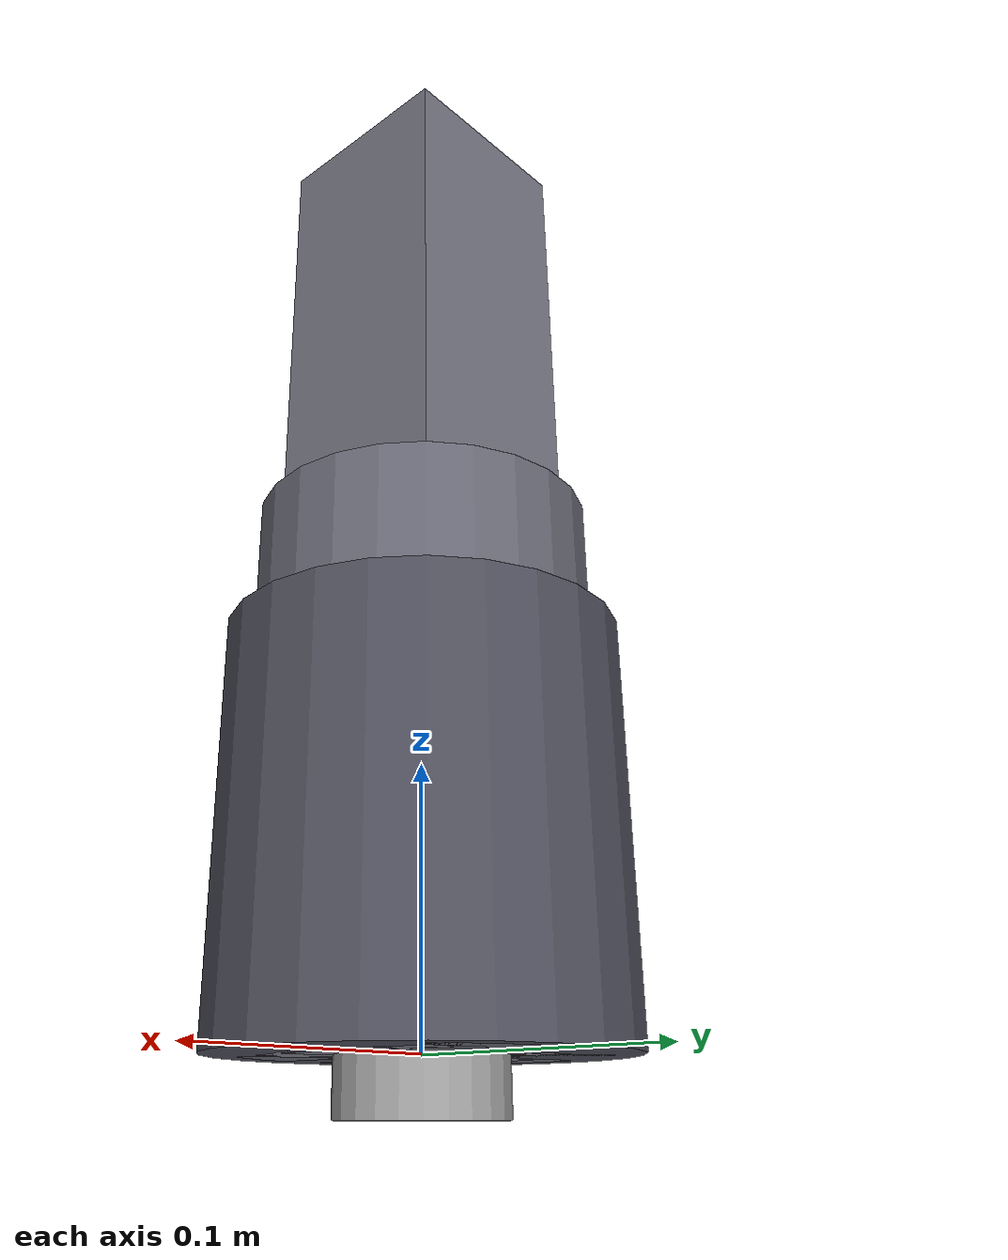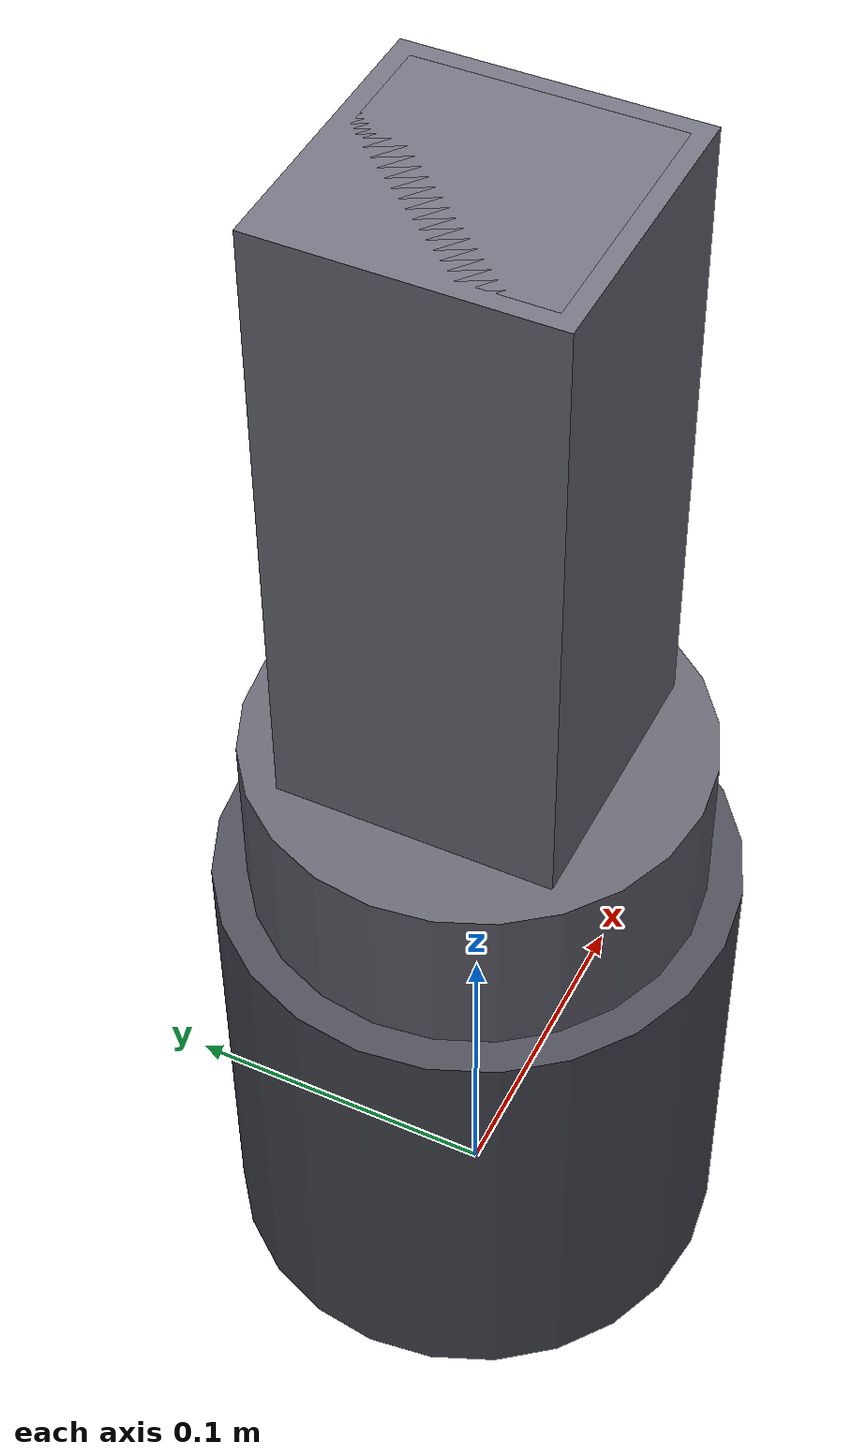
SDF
<?xml version="1.0" encoding="utf-8"?>
<sdf version="1.9">
  <model name="kinova_gen3">

    <!-- LINK 0: base_link (fixed base) -->
    <link name="base_link">
      <pose>0 0 0 0 0 0</pose>
      <inertial>
        <mass>0.50</mass>
        <inertia>
          <ixx>0.003</ixx> <ixy>0.0</ixy> <ixz>0.0</ixz>
          <iyy>0.003</iyy> <iyz>0.0</iyz>
          <izz>0.003</izz>
        </inertia>
      </inertial>
      <visual name="base_visual">
        <pose>0 0 0.075 0 0 0</pose>
        <geometry>
          <cylinder>
            <radius>0.075</radius>
            <length>0.15</length>
          </cylinder>
        </geometry>
        <material>
          <ambient>0.3 0.3 0.35 1</ambient>
          <diffuse>0.3 0.3 0.35 1</diffuse>
          <specular>0.1 0.1 0.1 1</specular>
        </material>
      </visual>
      <collision name="base_collision">
        <pose>0 0 0.075 0 0 0</pose>
        <geometry>
          <cylinder>
            <radius>0.075</radius>
            <length>0.15</length>
          </cylinder>
        </geometry>
      </collision>
    </link>

    <!-- JOINT 1: base → shoulder (actuator 1, Z-axis rotation) -->
    <joint name="joint_1" type="revolute">
      <parent>base_link</parent>
      <child>shoulder_link</child>
      <pose>0 0 0.15 0 0 0</pose>
      <axis>
        <xyz>0 0 1</xyz>
      </axis>
      <limit>
        <lower>-3.1416</lower>
        <upper>3.1416</upper>
        <effort>40</effort>
        <velocity>1.4</velocity>
      </limit>
      <dynamics>
        <damping>0.5</damping>
        <friction>0.3</friction>
      </dynamics>
    </joint>

    <!-- LINK 1: shoulder_link -->
    <link name="shoulder_link">
      <inertial>
        <mass>1.20</mass>
        <inertia>
          <ixx>0.005</ixx> <ixy>0.0</ixy> <ixz>0.0</ixz>
          <iyy>0.002</iyy> <iyz>0.0</iyz>
          <izz>0.005</izz>
        </inertia>
      </inertial>
      <visual name="shoulder_visual">
        <pose>0 0 0.10 0 0 0</pose>
        <geometry>
          <cylinder>
            <radius>0.065</radius>
            <length>0.20</length>
          </cylinder>
        </geometry>
        <material>
          <ambient>0.4 0.4 0.45 1</ambient>
          <diffuse>0.4 0.4 0.45 1</diffuse>
        </material>
      </visual>
      <collision name="shoulder_collision">
        <pose>0 0 0.10 0 0 0</pose>
        <geometry>
          <cylinder>
            <radius>0.065</radius>
            <length>0.20</length>
          </cylinder>
        </geometry>
      </collision>
    </link>

    <!-- JOINT 2: shoulder → upper_arm (actuator 2, Y-axis) -->
    <joint name="joint_2" type="revolute">
      <parent>shoulder_link</parent>
      <child>upper_arm_link</child>
      <pose>0 0 0.20 0 0 0</pose>
      <axis>
        <xyz>0 1 0</xyz>
      </axis>
      <limit>
        <lower>-2.25</lower>
        <upper>2.25</upper>
        <effort>40</effort>
        <velocity>1.4</velocity>
      </limit>
      <dynamics>
        <damping>0.5</damping>
        <friction>0.3</friction>
      </dynamics>
    </joint>

    <!-- LINK 2: upper_arm_link -->
    <link name="upper_arm_link">
      <inertial>
        <mass>1.00</mass>
        <pose>0 0 0.19 0 0 0</pose>
        <inertia>
          <ixx>0.012</ixx> <ixy>0.0</ixy> <ixz>0.0</ixz>
          <iyy>0.001</iyy> <iyz>0.0</iyz>
          <izz>0.012</izz>
        </inertia>
      </inertial>
      <visual name="upper_arm_visual">
        <pose>0 0 0.19 0 0 0</pose>
        <geometry>
          <box>
            <size>0.08 0.08 0.38</size>
          </box>
        </geometry>
        <material>
          <ambient>0.45 0.45 0.5 1</ambient>
          <diffuse>0.45 0.45 0.5 1</diffuse>
        </material>
      </visual>
      <collision name="upper_arm_collision">
        <pose>0 0 0.19 0 0 0</pose>
        <geometry>
          <box>
            <size>0.08 0.08 0.38</size>
          </box>
        </geometry>
      </collision>
    </link>

    <!-- JOINT 3: upper_arm → forearm (actuator 3, Y-axis) -->
    <joint name="joint_3" type="revolute">
      <parent>upper_arm_link</parent>
      <child>forearm_link</child>
      <pose>0 0 0.38 0 0 0</pose>
      <axis>
        <xyz>0 1 0</xyz>
      </axis>
      <limit>
        <lower>-3.1416</lower>
        <upper>3.1416</upper>
        <effort>20</effort>
        <velocity>1.5</velocity>
      </limit>
      <dynamics>
        <damping>0.4</damping>
        <friction>0.25</friction>
      </dynamics>
    </joint>

    <!-- LINK 3: forearm_link -->
    <link name="forearm_link">
      <inertial>
        <mass>0.85</mass>
        <pose>0 0 0.19 0 0 0</pose>
        <inertia>
          <ixx>0.010</ixx> <ixy>0.0</ixy> <ixz>0.0</ixz>
          <iyy>0.001</iyy> <iyz>0.0</iyz>
          <izz>0.010</izz>
        </inertia>
      </inertial>
      <visual name="forearm_visual">
        <pose>0 0 0.19 0 0 0</pose>
        <geometry>
          <box>
            <size>0.07 0.07 0.38</size>
          </box>
        </geometry>
        <material>
          <ambient>0.45 0.45 0.5 1</ambient>
          <diffuse>0.45 0.45 0.5 1</diffuse>
        </material>
      </visual>
      <collision name="forearm_collision">
        <pose>0 0 0.19 0 0 0</pose>
        <geometry>
          <box>
            <size>0.07 0.07 0.38</size>
          </box>
        </geometry>
      </collision>
    </link>

    <!-- JOINT 4: forearm → wrist_1 (actuator 4, X-axis) -->
    <joint name="joint_4" type="revolute">
      <parent>forearm_link</parent>
      <child>wrist_1_link</child>
      <pose>0 0 0.38 0 0 0</pose>
      <axis>
        <xyz>1 0 0</xyz>
      </axis>
      <limit>
        <lower>-2.58</lower>
        <upper>2.58</upper>
        <effort>10</effort>
        <velocity>1.6</velocity>
      </limit>
      <dynamics>
        <damping>0.3</damping>
        <friction>0.2</friction>
      </dynamics>
    </joint>

    <!-- LINK 4: wrist_1_link -->
    <link name="wrist_1_link">
      <inertial>
        <mass>0.30</mass>
        <pose>0 0 0.04 0 0 0</pose>
        <inertia>
          <ixx>0.0005</ixx> <ixy>0.0</ixy> <ixz>0.0</ixz>
          <iyy>0.0005</iyy> <iyz>0.0</iyz>
          <izz>0.0003</izz>
        </inertia>
      </inertial>
      <visual name="wrist_1_visual">
        <pose>0 0 0.04 0 0 0</pose>
        <geometry>
          <cylinder>
            <radius>0.05</radius>
            <length>0.08</length>
          </cylinder>
        </geometry>
        <material>
          <ambient>0.5 0.5 0.55 1</ambient>
          <diffuse>0.5 0.5 0.55 1</diffuse>
        </material>
      </visual>
      <collision name="wrist_1_collision">
        <pose>0 0 0.04 0 0 0</pose>
        <geometry>
          <cylinder>
            <radius>0.05</radius>
            <length>0.08</length>
          </cylinder>
        </geometry>
      </collision>
    </link>

    <!-- JOINT 5: wrist_1 → wrist_2 (actuator 5, Y-axis) -->
    <joint name="joint_5" type="revolute">
      <parent>wrist_1_link</parent>
      <child>wrist_2_link</child>
      <pose>0 0 0.08 0 0 0</pose>
      <axis>
        <xyz>0 1 0</xyz>
      </axis>
      <limit>
        <lower>-3.1416</lower>
        <upper>3.1416</upper>
        <effort>10</effort>
        <velocity>2.0</velocity>
      </limit>
      <dynamics>
        <damping>0.2</damping>
        <friction>0.15</friction>
      </dynamics>
    </joint>

    <!-- LINK 5: wrist_2_link -->
    <link name="wrist_2_link">
      <inertial>
        <mass>0.25</mass>
        <pose>0 0 0.04 0 0 0</pose>
        <inertia>
          <ixx>0.0004</ixx> <ixy>0.0</ixy> <ixz>0.0</ixz>
          <iyy>0.0004</iyy> <iyz>0.0</iyz>
          <izz>0.0002</izz>
        </inertia>
      </inertial>
      <visual name="wrist_2_visual">
        <pose>0 0 0.04 0 0 0</pose>
        <geometry>
          <cylinder>
            <radius>0.045</radius>
            <length>0.08</length>
          </cylinder>
        </geometry>
        <material>
          <ambient>0.5 0.5 0.55 1</ambient>
          <diffuse>0.5 0.5 0.55 1</diffuse>
        </material>
      </visual>
      <collision name="wrist_2_collision">
        <pose>0 0 0.04 0 0 0</pose>
        <geometry>
          <cylinder>
            <radius>0.045</radius>
            <length>0.08</length>
          </cylinder>
        </geometry>
      </collision>
    </link>

    <!-- JOINT 6: wrist_2 → wrist_3 (actuator 6, X-axis) -->
    <joint name="joint_6" type="revolute">
      <parent>wrist_2_link</parent>
      <child>wrist_3_link</child>
      <pose>0 0 0.08 0 0 0</pose>
      <axis>
        <xyz>1 0 0</xyz>
      </axis>
      <limit>
        <lower>-2.10</lower>
        <upper>2.10</upper>
        <effort>10</effort>
        <velocity>2.1</velocity>
      </limit>
      <dynamics>
        <damping>0.2</damping>
        <friction>0.15</friction>
      </dynamics>
    </joint>

    <!-- LINK 6: wrist_3_link -->
    <link name="wrist_3_link">
      <inertial>
        <mass>0.20</mass>
        <pose>0 0 0.035 0 0 0</pose>
        <inertia>
          <ixx>0.0003</ixx> <ixy>0.0</ixy> <ixz>0.0</ixz>
          <iyy>0.0003</iyy> <iyz>0.0</iyz>
          <izz>0.00015</izz>
        </inertia>
      </inertial>
      <visual name="wrist_3_visual">
        <pose>0 0 0.035 0 0 0</pose>
        <geometry>
          <cylinder>
            <radius>0.04</radius>
            <length>0.07</length>
          </cylinder>
        </geometry>
        <material>
          <ambient>0.5 0.5 0.55 1</ambient>
          <diffuse>0.5 0.5 0.55 1</diffuse>
        </material>
      </visual>
      <collision name="wrist_3_collision">
        <pose>0 0 0.035 0 0 0</pose>
        <geometry>
          <cylinder>
            <radius>0.04</radius>
            <length>0.07</length>
          </cylinder>
        </geometry>
      </collision>
    </link>

    <!-- JOINT 7: wrist_3 → ee_link (actuator 7, Z-axis) -->
    <joint name="joint_7" type="revolute">
      <parent>wrist_3_link</parent>
      <child>ee_link</child>
      <pose>0 0 0.07 0 0 0</pose>
      <axis>
        <xyz>0 0 1</xyz>
      </axis>
      <limit>
        <lower>-3.1416</lower>  <!-- ±180° (infinite rotation capable) -->
        <upper>3.1416</upper>
        <effort>10</effort>
        <velocity>2.5</velocity>
      </limit>
      <dynamics>
        <damping>0.15</damping>
        <friction>0.1</friction>
      </dynamics>
    </joint>

    <!-- LINK 7: ee_link (end effector mount flange) -->
    <link name="ee_link">
      <inertial>
        <mass>0.10</mass>
        <inertia>
          <ixx>0.0001</ixx> <ixy>0.0</ixy> <ixz>0.0</ixz>
          <iyy>0.0001</iyy> <iyz>0.0</iyz>
          <izz>0.0001</izz>
        </inertia>
      </inertial>
      <visual name="ee_visual">
        <geometry>
          <cylinder>
            <radius>0.03</radius>
            <length>0.04</length>
          </cylinder>
        </geometry>
        <material>
          <ambient>0.6 0.6 0.6 1</ambient>
          <diffuse>0.6 0.6 0.6 1</diffuse>
        </material>
      </visual>
      <collision name="ee_collision">
        <geometry>
          <cylinder>
            <radius>0.03</radius>
            <length>0.04</length>
          </cylinder>
        </geometry>
      </collision>
    </link>

    <!-- ROBOTIQ 2F-85 GRIPPER -->

    <!-- JOINT 8: ee_link → gripper_base (fixed) -->
    <joint name="gripper_base_joint" type="fixed">
      <parent>ee_link</parent>
      <child>gripper_base</child>
      <pose>0 0 0.02 0 0 0</pose>
    </joint>

    <link name="gripper_base">
      <inertial>
        <mass>0.30</mass>
        <inertia>
          <ixx>0.0002</ixx> <ixy>0.0</ixy> <ixz>0.0</ixz>
          <iyy>0.0002</iyy> <iyz>0.0</iyz>
          <izz>0.0003</izz>
        </inertia>
      </inertial>
      <visual name="gripper_base_visual">
        <pose>0 0 0.025 0 0 0</pose>
        <geometry>
          <box>
            <size>0.06 0.08 0.05</size>
          </box>
        </geometry>
        <material>
          <ambient>0.35 0.35 0.35 1</ambient>
          <diffuse>0.35 0.35 0.35 1</diffuse>
        </material>
      </visual>
      <collision name="gripper_base_collision">
        <pose>0 0 0.025 0 0 0</pose>
        <geometry>
          <box>
            <size>0.06 0.08 0.05</size>
          </box>
        </geometry>
      </collision>
    </link>

    <!-- JOINT 9: gripper_base → finger_left (prismatic) -->
    <joint name="finger_left_joint" type="prismatic">
      <parent>gripper_base</parent>
      <child>finger_left</child>
      <pose>0 -0.025 0.07 0 0 0</pose>
      <axis>
        <xyz>0 1 0</xyz>
      </axis>
      <limit>
        <lower>0.0</lower>
        <upper>0.0425</upper>  <!-- 85mm stroke / 2 -->
        <effort>100</effort>
        <velocity>0.05</velocity>
      </limit>
    </joint>

    <link name="finger_left">
      <inertial>
        <mass>0.08</mass>
        <pose>0 -0.02 0 0 0 0</pose>
        <inertia>
          <ixx>0.00005</ixx> <ixy>0.0</ixy> <ixz>0.0</ixz>
          <iyy>0.00005</iyy> <iyz>0.0</iyz>
          <izz>0.00005</izz>
        </inertia>
      </inertial>
      <visual name="finger_left_visual">
        <pose>0 -0.015 0.02 0 0 0</pose>
        <geometry>
          <box>
            <size>0.01 0.03 0.04</size>
          </box>
        </geometry>
        <material>
          <ambient>0.55 0.55 0.55 1</ambient>
          <diffuse>0.55 0.55 0.55 1</diffuse>
        </material>
      </visual>
      <collision name="finger_left_collision">
        <pose>0 -0.015 0.02 0 0 0</pose>
        <geometry>
          <box>
            <size>0.01 0.03 0.04</size>
          </box>
        </geometry>
      </collision>
    </link>

    <!-- JOINT 10: gripper_base → finger_right (prismatic) -->
    <joint name="finger_right_joint" type="prismatic">
      <parent>gripper_base</parent>
      <child>finger_right</child>
      <pose>0 0.025 0.07 0 0 0</pose>
      <axis>
        <xyz>0 -1 0</xyz>
      </axis>
      <limit>
        <lower>0.0</lower>
        <upper>0.0425</upper>  <!-- 85mm stroke / 2 -->
        <effort>100</effort>
        <velocity>0.05</velocity>
      </limit>
    </joint>

    <link name="finger_right">
      <inertial>
        <mass>0.08</mass>
        <pose>0 0.02 0 0 0 0</pose>
        <inertia>
          <ixx>0.00005</ixx> <ixy>0.0</ixy> <ixz>0.0</ixz>
          <iyy>0.00005</iyy> <iyz>0.0</iyz>
          <izz>0.00005</izz>
        </inertia>
      </inertial>
      <visual name="finger_right_visual">
        <pose>0 0.015 0.02 0 0 0</pose>
        <geometry>
          <box>
            <size>0.01 0.03 0.04</size>
          </box>
        </geometry>
        <material>
          <ambient>0.55 0.55 0.55 1</ambient>
          <diffuse>0.55 0.55 0.55 1</diffuse>
        </material>
      </visual>
      <collision name="finger_right_collision">
        <pose>0 0.015 0.02 0 0 0</pose>
        <geometry>
          <box>
            <size>0.01 0.03 0.04</size>
          </box>
        </geometry>
      </collision>
    </link>

    <!-- GAZEBO PLUGINS -->

    <!-- Joint State Publisher -->
    <plugin name="joint_state_publisher" filename="libgazebo_ros_joint_state_publisher.so">
      <ros>
        <namespace>/kinova_gen3</namespace>
        <remapping>~/joint_states:=/joint_states</remapping>
      </ros>
      <update_rate>100</update_rate>
      <joint_name>joint_1</joint_name>
      <joint_name>joint_2</joint_name>
      <joint_name>joint_3</joint_name>
      <joint_name>joint_4</joint_name>
      <joint_name>joint_5</joint_name>
      <joint_name>joint_6</joint_name>
      <joint_name>joint_7</joint_name>
      <joint_name>finger_left_joint</joint_name>
      <joint_name>finger_right_joint</joint_name>
    </plugin>

    <!-- Effort Controller for all arm joints -->
    <plugin name="arm_controller" filename="libgazebo_ros_effort_controller.so">
      <ros>
        <namespace>/kinova_gen3</namespace>
      </ros>
      <joint name="joint_1"/>
      <joint name="joint_2"/>
      <joint name="joint_3"/>
      <joint name="joint_4"/>
      <joint name="joint_5"/>
      <joint name="joint_6"/>
      <joint name="joint_7"/>
    </plugin>

    <!-- Effort Controller for gripper joints -->
    <plugin name="gripper_controller" filename="libgazebo_ros_effort_controller.so">
      <ros>
        <namespace>/kinova_gen3</namespace>
      </ros>
      <joint name="finger_left_joint"/>
      <joint name="finger_right_joint"/>
    </plugin>

    <!-- Contact Sensor on Gripper Fingers -->
    <plugin name="finger_left_contact" filename="libgazebo_ros_bumper.so">
      <ros>
        <namespace>/kinova_gen3</namespace>
      </ros>
      <frame_name>finger_left</frame_name>
    </plugin>

    <plugin name="finger_right_contact" filename="libgazebo_ros_bumper.so">
      <ros>
        <namespace>/kinova_gen3</namespace>
      </ros>
      <frame_name>finger_right</frame_name>
    </plugin>

    <!-- Force-Torque Sensor at Wrist -->
    <plugin name="wrist_ft_sensor" filename="libgazebo_ros_ft_sensor.so">
      <ros>
        <namespace>/kinova_gen3</namespace>
        <remapping>~/wrench:=/wrist_ft</remapping>
      </ros>
      <frame_name>wrist_3_link</frame_name>
    </plugin>

  </model>
</sdf>
